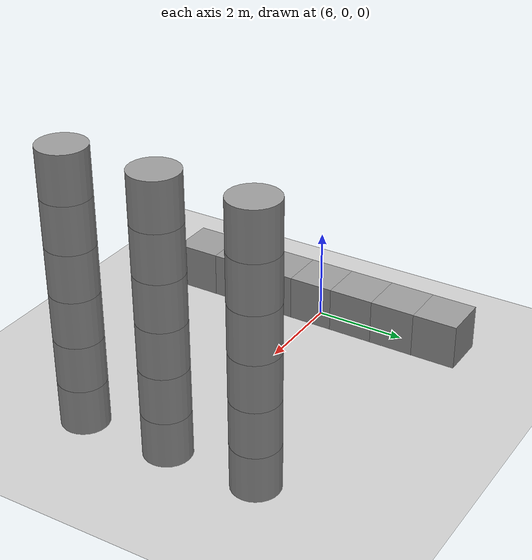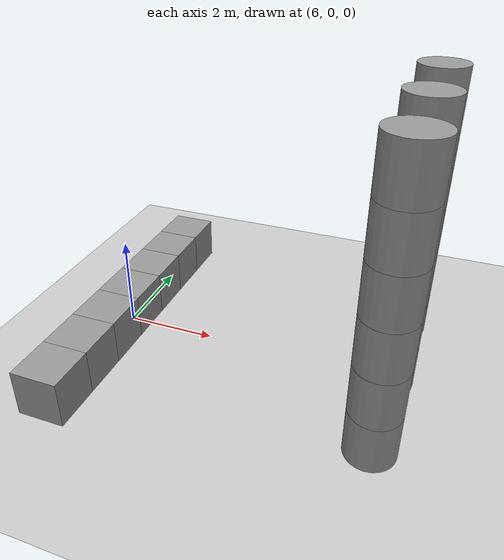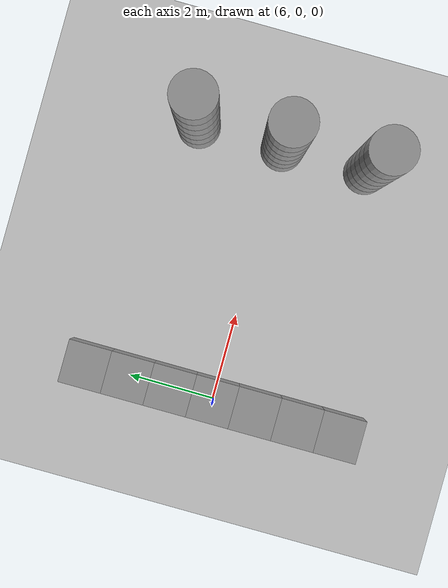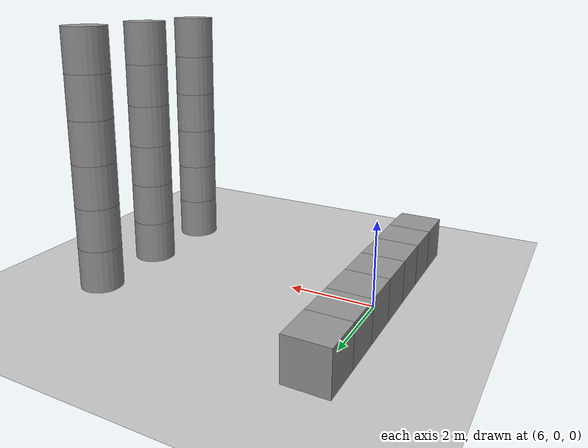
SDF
<sdf version="1.6">
 <world name="default">
  <light name="sun" type="directional">
   <pose>0 0 10 0 -0 0</pose>
   <diffuse>0.8 0.8 0.8 1</diffuse>
   <specular>0.2 0.2 0.2 1</specular>
   <attenuation>
    <range>1000</range>
    <constant>0.9</constant>
    <linear>0.01</linear>
    <quadratic>0.001</quadratic>
   </attenuation>
   <direction>-0.5 0.1 -0.9</direction>
  </light>
  <model name="ground_plane">
   <static>1</static>
   <link name="link">
    <collision name="collision">
     <geometry><plane><normal>0 0 1</normal><size>100 100</size></plane></geometry>
     <surface>
      <contact><collide_bitmask>65535</collide_bitmask></contact>
      <friction><ode><mu>100</mu><mu2>50</mu2></ode></friction>
     </surface>
    </collision>
    <visual name="visual">
     <cast_shadows>0</cast_shadows>
     <geometry><plane><normal>0 0 1</normal><size>100 100</size></plane></geometry>
     <material>
      <script><uri>file://media/materials/scripts/gazebo.material</uri><name>Gazebo/Grey</name></script>
     </material>
    </visual>
   </link>
  </model>
  <gravity>0 0 -9.8</gravity>
  <magnetic_field>6e-06 2.3e-05 -4.2e-05</magnetic_field>
  <atmosphere type="adiabatic"/>
  <physics name="default_physics" default="0" type="ode">
   <max_step_size>0.001</max_step_size>
   <real_time_factor>1</real_time_factor>
   <real_time_update_rate>1000</real_time_update_rate>
  </physics>
  <scene><ambient>0.4 0.4 0.4 1</ambient><background>0.7 0.7 0.7 1</background><shadows>1</shadows></scene>
  <audio><device>default</device></audio>
  <spherical_coordinates>
   <surface_model>EARTH_WGS84</surface_model>
   <latitude_deg>0</latitude_deg>
   <longitude_deg>0</longitude_deg>
   <elevation>0</elevation>
   <heading_deg>0</heading_deg>
  </spherical_coordinates>
  <model name="obs_box">
   <link name="link">
    <inertial>
     <mass>1</mass>
     <inertia>
      <ixx>0.166667</ixx>
      <ixy>0</ixy>
      <ixz>0</ixz>
      <iyy>0.166667</iyy>
      <iyz>0</iyz>
      <izz>0.166667</izz>
     </inertia>
    </inertial>
    <visual name="visual">
     <geometry><box><size>1 1 1</size></box></geometry>
     <material>
      <script><name>Gazebo/Grey</name><uri>file://media/materials/scripts/gazebo.material</uri></script>
     </material>
    </visual>
    <collision name="collision">
     <geometry><box><size>1 1 1</size></box></geometry>
     <surface>
      <friction>
       <ode><mu>1</mu><mu2>1</mu2><fdir1>0 0 0</fdir1><slip1>0</slip1><slip2>0</slip2></ode>
       <torsional>
        <coefficient>1</coefficient>
        <patch_radius>0</patch_radius>
        <surface_radius>0</surface_radius>
        <use_patch_radius>1</use_patch_radius>
        <ode><slip>0</slip></ode>
       </torsional>
      </friction>
      <bounce><restitution_coefficient>0</restitution_coefficient><threshold>1e+06</threshold></bounce>
      <contact>
       <collide_without_contact>0</collide_without_contact>
       <collide_without_contact_bitmask>1</collide_without_contact_bitmask>
       <collide_bitmask>1</collide_bitmask>
       <ode>
        <soft_cfm>0</soft_cfm>
        <soft_erp>0.2</soft_erp>
        <kp>1e+13</kp>
        <kd>1</kd>
        <max_vel>0.01</max_vel>
        <min_depth>0</min_depth>
       </ode>
       <bullet>
        <split_impulse>1</split_impulse>
        <split_impulse_penetration_threshold>-0.01</split_impulse_penetration_threshold>
        <soft_cfm>0</soft_cfm>
        <soft_erp>0.2</soft_erp>
        <kp>1e+13</kp>
        <kd>1</kd>
       </bullet>
      </contact>
     </surface>
    </collision>
   </link>
   <static>1</static>
   <pose>6 -1 0.5 0 -0 0</pose>
  </model>
  <model name="obs_box_clone">
   <link name="link">
    <inertial>
     <mass>1</mass>
     <inertia>
      <ixx>0.166667</ixx>
      <ixy>0</ixy>
      <ixz>0</ixz>
      <iyy>0.166667</iyy>
      <iyz>0</iyz>
      <izz>0.166667</izz>
     </inertia>
    </inertial>
    <visual name="visual">
     <geometry><box><size>1 1 1</size></box></geometry>
     <material>
      <script><name>Gazebo/Grey</name><uri>file://media/materials/scripts/gazebo.material</uri></script>
     </material>
    </visual>
    <collision name="collision">
     <geometry><box><size>1 1 1</size></box></geometry>
     <surface>
      <friction>
       <ode><mu>1</mu><mu2>1</mu2><fdir1>0 0 0</fdir1><slip1>0</slip1><slip2>0</slip2></ode>
       <torsional>
        <coefficient>1</coefficient>
        <patch_radius>0</patch_radius>
        <surface_radius>0</surface_radius>
        <use_patch_radius>1</use_patch_radius>
        <ode><slip>0</slip></ode>
       </torsional>
      </friction>
      <bounce><restitution_coefficient>0</restitution_coefficient><threshold>1e+06</threshold></bounce>
      <contact>
       <collide_without_contact>0</collide_without_contact>
       <collide_without_contact_bitmask>1</collide_without_contact_bitmask>
       <collide_bitmask>1</collide_bitmask>
       <ode>
        <soft_cfm>0</soft_cfm>
        <soft_erp>0.2</soft_erp>
        <kp>1e+13</kp>
        <kd>1</kd>
        <max_vel>0.01</max_vel>
        <min_depth>0</min_depth>
       </ode>
       <bullet>
        <split_impulse>1</split_impulse>
        <split_impulse_penetration_threshold>-0.01</split_impulse_penetration_threshold>
        <soft_cfm>0</soft_cfm>
        <soft_erp>0.2</soft_erp>
        <kp>1e+13</kp>
        <kd>1</kd>
       </bullet>
      </contact>
     </surface>
    </collision>
   </link>
   <static>1</static>
   <pose>6 1 0.5 0 -0 0</pose>
  </model>
  <model name="obs_box_clone_0">
   <link name="link">
    <inertial>
     <mass>1</mass>
     <inertia>
      <ixx>0.166667</ixx>
      <ixy>0</ixy>
      <ixz>0</ixz>
      <iyy>0.166667</iyy>
      <iyz>0</iyz>
      <izz>0.166667</izz>
     </inertia>
    </inertial>
    <visual name="visual">
     <geometry><box><size>1 1 1</size></box></geometry>
     <material>
      <script><name>Gazebo/Grey</name><uri>file://media/materials/scripts/gazebo.material</uri></script>
     </material>
    </visual>
    <collision name="collision">
     <geometry><box><size>1 1 1</size></box></geometry>
     <surface>
      <friction>
       <ode><mu>1</mu><mu2>1</mu2><fdir1>0 0 0</fdir1><slip1>0</slip1><slip2>0</slip2></ode>
       <torsional>
        <coefficient>1</coefficient>
        <patch_radius>0</patch_radius>
        <surface_radius>0</surface_radius>
        <use_patch_radius>1</use_patch_radius>
        <ode><slip>0</slip></ode>
       </torsional>
      </friction>
      <bounce><restitution_coefficient>0</restitution_coefficient><threshold>1e+06</threshold></bounce>
      <contact>
       <collide_without_contact>0</collide_without_contact>
       <collide_without_contact_bitmask>1</collide_without_contact_bitmask>
       <collide_bitmask>1</collide_bitmask>
       <ode>
        <soft_cfm>0</soft_cfm>
        <soft_erp>0.2</soft_erp>
        <kp>1e+13</kp>
        <kd>1</kd>
        <max_vel>0.01</max_vel>
        <min_depth>0</min_depth>
       </ode>
       <bullet>
        <split_impulse>1</split_impulse>
        <split_impulse_penetration_threshold>-0.01</split_impulse_penetration_threshold>
        <soft_cfm>0</soft_cfm>
        <soft_erp>0.2</soft_erp>
        <kp>1e+13</kp>
        <kd>1</kd>
       </bullet>
      </contact>
     </surface>
    </collision>
   </link>
   <static>1</static>
   <pose>6 0 0.5 0 -0 0</pose>
  </model>
  <model name="obs_cylinder">
   <link name="link">
    <inertial>
     <mass>1</mass>
     <inertia><ixx>0.145833</ixx><ixy>0</ixy><ixz>0</ixz><iyy>0.145833</iyy><iyz>0</iyz><izz>0.125</izz></inertia>
    </inertial>
    <visual name="visual">
     <geometry><cylinder><radius>0.5</radius><length>1</length></cylinder></geometry>
     <material>
      <script><name>Gazebo/Grey</name><uri>file://media/materials/scripts/gazebo.material</uri></script>
     </material>
    </visual>
    <collision name="collision">
     <geometry><cylinder><radius>0.5</radius><length>1</length></cylinder></geometry>
     <surface>
      <friction>
       <ode><mu>1</mu><mu2>1</mu2><fdir1>0 0 0</fdir1><slip1>0</slip1><slip2>0</slip2></ode>
       <torsional>
        <coefficient>1</coefficient>
        <patch_radius>0</patch_radius>
        <surface_radius>0</surface_radius>
        <use_patch_radius>1</use_patch_radius>
        <ode><slip>0</slip></ode>
       </torsional>
      </friction>
      <bounce><restitution_coefficient>0</restitution_coefficient><threshold>1e+06</threshold></bounce>
      <contact>
       <collide_without_contact>0</collide_without_contact>
       <collide_without_contact_bitmask>1</collide_without_contact_bitmask>
       <collide_bitmask>1</collide_bitmask>
       <ode>
        <soft_cfm>0</soft_cfm>
        <soft_erp>0.2</soft_erp>
        <kp>1e+13</kp>
        <kd>1</kd>
        <max_vel>0.01</max_vel>
        <min_depth>0</min_depth>
       </ode>
       <bullet>
        <split_impulse>1</split_impulse>
        <split_impulse_penetration_threshold>-0.01</split_impulse_penetration_threshold>
        <soft_cfm>0</soft_cfm>
        <soft_erp>0.2</soft_erp>
        <kp>1e+13</kp>
        <kd>1</kd>
       </bullet>
      </contact>
     </surface>
    </collision>
   </link>
   <static>1</static>
   <pose>12 -2 0.5 0 -0 0</pose>
  </model>
  <model name="obs_cylinder_clone">
   <link name="link">
    <inertial>
     <mass>1</mass>
     <inertia><ixx>0.145833</ixx><ixy>0</ixy><ixz>0</ixz><iyy>0.145833</iyy><iyz>0</iyz><izz>0.125</izz></inertia>
    </inertial>
    <visual name="visual">
     <geometry><cylinder><radius>0.5</radius><length>1</length></cylinder></geometry>
     <material>
      <script><name>Gazebo/Grey</name><uri>file://media/materials/scripts/gazebo.material</uri></script>
     </material>
    </visual>
    <collision name="collision">
     <geometry><cylinder><radius>0.5</radius><length>1</length></cylinder></geometry>
     <surface>
      <friction>
       <ode><mu>1</mu><mu2>1</mu2><fdir1>0 0 0</fdir1><slip1>0</slip1><slip2>0</slip2></ode>
       <torsional>
        <coefficient>1</coefficient>
        <patch_radius>0</patch_radius>
        <surface_radius>0</surface_radius>
        <use_patch_radius>1</use_patch_radius>
        <ode><slip>0</slip></ode>
       </torsional>
      </friction>
      <bounce><restitution_coefficient>0</restitution_coefficient><threshold>1e+06</threshold></bounce>
      <contact>
       <collide_without_contact>0</collide_without_contact>
       <collide_without_contact_bitmask>1</collide_without_contact_bitmask>
       <collide_bitmask>1</collide_bitmask>
       <ode>
        <soft_cfm>0</soft_cfm>
        <soft_erp>0.2</soft_erp>
        <kp>1e+13</kp>
        <kd>1</kd>
        <max_vel>0.01</max_vel>
        <min_depth>0</min_depth>
       </ode>
       <bullet>
        <split_impulse>1</split_impulse>
        <split_impulse_penetration_threshold>-0.01</split_impulse_penetration_threshold>
        <soft_cfm>0</soft_cfm>
        <soft_erp>0.2</soft_erp>
        <kp>1e+13</kp>
        <kd>1</kd>
       </bullet>
      </contact>
     </surface>
    </collision>
   </link>
   <static>1</static>
   <pose>12 -2 1.5 0 -0 0</pose>
  </model>
  <model name="obs_cylinder_clone_clone">
   <link name="link">
    <inertial>
     <mass>1</mass>
     <inertia><ixx>0.145833</ixx><ixy>0</ixy><ixz>0</ixz><iyy>0.145833</iyy><iyz>0</iyz><izz>0.125</izz></inertia>
    </inertial>
    <visual name="visual">
     <geometry><cylinder><radius>0.5</radius><length>1</length></cylinder></geometry>
     <material>
      <script><name>Gazebo/Grey</name><uri>file://media/materials/scripts/gazebo.material</uri></script>
     </material>
    </visual>
    <collision name="collision">
     <geometry><cylinder><radius>0.5</radius><length>1</length></cylinder></geometry>
     <surface>
      <friction>
       <ode><mu>1</mu><mu2>1</mu2><fdir1>0 0 0</fdir1><slip1>0</slip1><slip2>0</slip2></ode>
       <torsional>
        <coefficient>1</coefficient>
        <patch_radius>0</patch_radius>
        <surface_radius>0</surface_radius>
        <use_patch_radius>1</use_patch_radius>
        <ode><slip>0</slip></ode>
       </torsional>
      </friction>
      <bounce><restitution_coefficient>0</restitution_coefficient><threshold>1e+06</threshold></bounce>
      <contact>
       <collide_without_contact>0</collide_without_contact>
       <collide_without_contact_bitmask>1</collide_without_contact_bitmask>
       <collide_bitmask>1</collide_bitmask>
       <ode>
        <soft_cfm>0</soft_cfm>
        <soft_erp>0.2</soft_erp>
        <kp>1e+13</kp>
        <kd>1</kd>
        <max_vel>0.01</max_vel>
        <min_depth>0</min_depth>
       </ode>
       <bullet>
        <split_impulse>1</split_impulse>
        <split_impulse_penetration_threshold>-0.01</split_impulse_penetration_threshold>
        <soft_cfm>0</soft_cfm>
        <soft_erp>0.2</soft_erp>
        <kp>1e+13</kp>
        <kd>1</kd>
       </bullet>
      </contact>
     </surface>
    </collision>
   </link>
   <static>1</static>
   <pose>12 -2 2.5 0 -0 0</pose>
  </model>
  <model name="obs_cylinder_clone_0">
   <link name="link">
    <inertial>
     <mass>1</mass>
     <inertia><ixx>0.145833</ixx><ixy>0</ixy><ixz>0</ixz><iyy>0.145833</iyy><iyz>0</iyz><izz>0.125</izz></inertia>
    </inertial>
    <visual name="visual">
     <geometry><cylinder><radius>0.5</radius><length>1</length></cylinder></geometry>
     <material>
      <script><name>Gazebo/Grey</name><uri>file://media/materials/scripts/gazebo.material</uri></script>
     </material>
    </visual>
    <collision name="collision">
     <geometry><cylinder><radius>0.5</radius><length>1</length></cylinder></geometry>
     <surface>
      <friction>
       <ode><mu>1</mu><mu2>1</mu2><fdir1>0 0 0</fdir1><slip1>0</slip1><slip2>0</slip2></ode>
       <torsional>
        <coefficient>1</coefficient>
        <patch_radius>0</patch_radius>
        <surface_radius>0</surface_radius>
        <use_patch_radius>1</use_patch_radius>
        <ode><slip>0</slip></ode>
       </torsional>
      </friction>
      <bounce><restitution_coefficient>0</restitution_coefficient><threshold>1e+06</threshold></bounce>
      <contact>
       <collide_without_contact>0</collide_without_contact>
       <collide_without_contact_bitmask>1</collide_without_contact_bitmask>
       <collide_bitmask>1</collide_bitmask>
       <ode>
        <soft_cfm>0</soft_cfm>
        <soft_erp>0.2</soft_erp>
        <kp>1e+13</kp>
        <kd>1</kd>
        <max_vel>0.01</max_vel>
        <min_depth>0</min_depth>
       </ode>
       <bullet>
        <split_impulse>1</split_impulse>
        <split_impulse_penetration_threshold>-0.01</split_impulse_penetration_threshold>
        <soft_cfm>0</soft_cfm>
        <soft_erp>0.2</soft_erp>
        <kp>1e+13</kp>
        <kd>1</kd>
       </bullet>
      </contact>
     </surface>
    </collision>
   </link>
   <static>1</static>
   <pose>12 0 0.5 0 -0 0</pose>
  </model>
  <model name="obs_cylinder_clone_0_clone">
   <link name="link">
    <inertial>
     <mass>1</mass>
     <inertia><ixx>0.145833</ixx><ixy>0</ixy><ixz>0</ixz><iyy>0.145833</iyy><iyz>0</iyz><izz>0.125</izz></inertia>
    </inertial>
    <visual name="visual">
     <geometry><cylinder><radius>0.5</radius><length>1</length></cylinder></geometry>
     <material>
      <script><name>Gazebo/Grey</name><uri>file://media/materials/scripts/gazebo.material</uri></script>
     </material>
    </visual>
    <collision name="collision">
     <geometry><cylinder><radius>0.5</radius><length>1</length></cylinder></geometry>
     <surface>
      <friction>
       <ode><mu>1</mu><mu2>1</mu2><fdir1>0 0 0</fdir1><slip1>0</slip1><slip2>0</slip2></ode>
       <torsional>
        <coefficient>1</coefficient>
        <patch_radius>0</patch_radius>
        <surface_radius>0</surface_radius>
        <use_patch_radius>1</use_patch_radius>
        <ode><slip>0</slip></ode>
       </torsional>
      </friction>
      <bounce><restitution_coefficient>0</restitution_coefficient><threshold>1e+06</threshold></bounce>
      <contact>
       <collide_without_contact>0</collide_without_contact>
       <collide_without_contact_bitmask>1</collide_without_contact_bitmask>
       <collide_bitmask>1</collide_bitmask>
       <ode>
        <soft_cfm>0</soft_cfm>
        <soft_erp>0.2</soft_erp>
        <kp>1e+13</kp>
        <kd>1</kd>
        <max_vel>0.01</max_vel>
        <min_depth>0</min_depth>
       </ode>
       <bullet>
        <split_impulse>1</split_impulse>
        <split_impulse_penetration_threshold>-0.01</split_impulse_penetration_threshold>
        <soft_cfm>0</soft_cfm>
        <soft_erp>0.2</soft_erp>
        <kp>1e+13</kp>
        <kd>1</kd>
       </bullet>
      </contact>
     </surface>
    </collision>
   </link>
   <static>1</static>
   <pose>12 2 0.5 0 -0 0</pose>
  </model>
  <model name="obs_cylinder_clone_clone_0">
   <link name="link">
    <inertial>
     <mass>1</mass>
     <inertia><ixx>0.145833</ixx><ixy>0</ixy><ixz>0</ixz><iyy>0.145833</iyy><iyz>0</iyz><izz>0.125</izz></inertia>
    </inertial>
    <visual name="visual">
     <geometry><cylinder><radius>0.5</radius><length>1</length></cylinder></geometry>
     <material>
      <script><name>Gazebo/Grey</name><uri>file://media/materials/scripts/gazebo.material</uri></script>
     </material>
    </visual>
    <collision name="collision">
     <geometry><cylinder><radius>0.5</radius><length>1</length></cylinder></geometry>
     <surface>
      <friction>
       <ode><mu>1</mu><mu2>1</mu2><fdir1>0 0 0</fdir1><slip1>0</slip1><slip2>0</slip2></ode>
       <torsional>
        <coefficient>1</coefficient>
        <patch_radius>0</patch_radius>
        <surface_radius>0</surface_radius>
        <use_patch_radius>1</use_patch_radius>
        <ode><slip>0</slip></ode>
       </torsional>
      </friction>
      <bounce><restitution_coefficient>0</restitution_coefficient><threshold>1e+06</threshold></bounce>
      <contact>
       <collide_without_contact>0</collide_without_contact>
       <collide_without_contact_bitmask>1</collide_without_contact_bitmask>
       <collide_bitmask>1</collide_bitmask>
       <ode>
        <soft_cfm>0</soft_cfm>
        <soft_erp>0.2</soft_erp>
        <kp>1e+13</kp>
        <kd>1</kd>
        <max_vel>0.01</max_vel>
        <min_depth>0</min_depth>
       </ode>
       <bullet>
        <split_impulse>1</split_impulse>
        <split_impulse_penetration_threshold>-0.01</split_impulse_penetration_threshold>
        <soft_cfm>0</soft_cfm>
        <soft_erp>0.2</soft_erp>
        <kp>1e+13</kp>
        <kd>1</kd>
       </bullet>
      </contact>
     </surface>
    </collision>
   </link>
   <static>1</static>
   <pose>12 0 1.5 0 -0 0</pose>
  </model>
  <model name="obs_cylinder_clone_clone_0_clone">
   <link name="link">
    <inertial>
     <mass>1</mass>
     <inertia><ixx>0.145833</ixx><ixy>0</ixy><ixz>0</ixz><iyy>0.145833</iyy><iyz>0</iyz><izz>0.125</izz></inertia>
    </inertial>
    <visual name="visual">
     <geometry><cylinder><radius>0.5</radius><length>1</length></cylinder></geometry>
     <material>
      <script><name>Gazebo/Grey</name><uri>file://media/materials/scripts/gazebo.material</uri></script>
     </material>
    </visual>
    <collision name="collision">
     <geometry><cylinder><radius>0.5</radius><length>1</length></cylinder></geometry>
     <surface>
      <friction>
       <ode><mu>1</mu><mu2>1</mu2><fdir1>0 0 0</fdir1><slip1>0</slip1><slip2>0</slip2></ode>
       <torsional>
        <coefficient>1</coefficient>
        <patch_radius>0</patch_radius>
        <surface_radius>0</surface_radius>
        <use_patch_radius>1</use_patch_radius>
        <ode><slip>0</slip></ode>
       </torsional>
      </friction>
      <bounce><restitution_coefficient>0</restitution_coefficient><threshold>1e+06</threshold></bounce>
      <contact>
       <collide_without_contact>0</collide_without_contact>
       <collide_without_contact_bitmask>1</collide_without_contact_bitmask>
       <collide_bitmask>1</collide_bitmask>
       <ode>
        <soft_cfm>0</soft_cfm>
        <soft_erp>0.2</soft_erp>
        <kp>1e+13</kp>
        <kd>1</kd>
        <max_vel>0.01</max_vel>
        <min_depth>0</min_depth>
       </ode>
       <bullet>
        <split_impulse>1</split_impulse>
        <split_impulse_penetration_threshold>-0.01</split_impulse_penetration_threshold>
        <soft_cfm>0</soft_cfm>
        <soft_erp>0.2</soft_erp>
        <kp>1e+13</kp>
        <kd>1</kd>
       </bullet>
      </contact>
     </surface>
    </collision>
   </link>
   <static>1</static>
   <pose>12 2 1.5 0 -0 0</pose>
  </model>
  <model name="obs_cylinder_clone_clone_clone">
   <link name="link">
    <inertial>
     <mass>1</mass>
     <inertia><ixx>0.145833</ixx><ixy>0</ixy><ixz>0</ixz><iyy>0.145833</iyy><iyz>0</iyz><izz>0.125</izz></inertia>
    </inertial>
    <visual name="visual">
     <geometry><cylinder><radius>0.5</radius><length>1</length></cylinder></geometry>
     <material>
      <script><name>Gazebo/Grey</name><uri>file://media/materials/scripts/gazebo.material</uri></script>
     </material>
    </visual>
    <collision name="collision">
     <geometry><cylinder><radius>0.5</radius><length>1</length></cylinder></geometry>
     <surface>
      <friction>
       <ode><mu>1</mu><mu2>1</mu2><fdir1>0 0 0</fdir1><slip1>0</slip1><slip2>0</slip2></ode>
       <torsional>
        <coefficient>1</coefficient>
        <patch_radius>0</patch_radius>
        <surface_radius>0</surface_radius>
        <use_patch_radius>1</use_patch_radius>
        <ode><slip>0</slip></ode>
       </torsional>
      </friction>
      <bounce><restitution_coefficient>0</restitution_coefficient><threshold>1e+06</threshold></bounce>
      <contact>
       <collide_without_contact>0</collide_without_contact>
       <collide_without_contact_bitmask>1</collide_without_contact_bitmask>
       <collide_bitmask>1</collide_bitmask>
       <ode>
        <soft_cfm>0</soft_cfm>
        <soft_erp>0.2</soft_erp>
        <kp>1e+13</kp>
        <kd>1</kd>
        <max_vel>0.01</max_vel>
        <min_depth>0</min_depth>
       </ode>
       <bullet>
        <split_impulse>1</split_impulse>
        <split_impulse_penetration_threshold>-0.01</split_impulse_penetration_threshold>
        <soft_cfm>0</soft_cfm>
        <soft_erp>0.2</soft_erp>
        <kp>1e+13</kp>
        <kd>1</kd>
       </bullet>
      </contact>
     </surface>
    </collision>
   </link>
   <static>1</static>
   <pose>12 0 2.5 0 -0 0</pose>
  </model>
  <model name="obs_cylinder_clone_clone_clone_clone">
   <link name="link">
    <inertial>
     <mass>1</mass>
     <inertia><ixx>0.145833</ixx><ixy>0</ixy><ixz>0</ixz><iyy>0.145833</iyy><iyz>0</iyz><izz>0.125</izz></inertia>
    </inertial>
    <visual name="visual">
     <geometry><cylinder><radius>0.5</radius><length>1</length></cylinder></geometry>
     <material>
      <script><name>Gazebo/Grey</name><uri>file://media/materials/scripts/gazebo.material</uri></script>
     </material>
    </visual>
    <collision name="collision">
     <geometry><cylinder><radius>0.5</radius><length>1</length></cylinder></geometry>
     <surface>
      <friction>
       <ode><mu>1</mu><mu2>1</mu2><fdir1>0 0 0</fdir1><slip1>0</slip1><slip2>0</slip2></ode>
       <torsional>
        <coefficient>1</coefficient>
        <patch_radius>0</patch_radius>
        <surface_radius>0</surface_radius>
        <use_patch_radius>1</use_patch_radius>
        <ode><slip>0</slip></ode>
       </torsional>
      </friction>
      <bounce><restitution_coefficient>0</restitution_coefficient><threshold>1e+06</threshold></bounce>
      <contact>
       <collide_without_contact>0</collide_without_contact>
       <collide_without_contact_bitmask>1</collide_without_contact_bitmask>
       <collide_bitmask>1</collide_bitmask>
       <ode>
        <soft_cfm>0</soft_cfm>
        <soft_erp>0.2</soft_erp>
        <kp>1e+13</kp>
        <kd>1</kd>
        <max_vel>0.01</max_vel>
        <min_depth>0</min_depth>
       </ode>
       <bullet>
        <split_impulse>1</split_impulse>
        <split_impulse_penetration_threshold>-0.01</split_impulse_penetration_threshold>
        <soft_cfm>0</soft_cfm>
        <soft_erp>0.2</soft_erp>
        <kp>1e+13</kp>
        <kd>1</kd>
       </bullet>
      </contact>
     </surface>
    </collision>
   </link>
   <static>1</static>
   <pose>12 2 2.5 0 -0 0</pose>
  </model>
  <model name="obs_cylinder_clone_clone_clone_0">
   <link name="link">
    <inertial>
     <mass>1</mass>
     <inertia><ixx>0.145833</ixx><ixy>0</ixy><ixz>0</ixz><iyy>0.145833</iyy><iyz>0</iyz><izz>0.125</izz></inertia>
    </inertial>
    <visual name="visual">
     <geometry><cylinder><radius>0.5</radius><length>1</length></cylinder></geometry>
     <material>
      <script><name>Gazebo/Grey</name><uri>file://media/materials/scripts/gazebo.material</uri></script>
     </material>
    </visual>
    <collision name="collision">
     <geometry><cylinder><radius>0.5</radius><length>1</length></cylinder></geometry>
     <surface>
      <friction>
       <ode><mu>1</mu><mu2>1</mu2><fdir1>0 0 0</fdir1><slip1>0</slip1><slip2>0</slip2></ode>
       <torsional>
        <coefficient>1</coefficient>
        <patch_radius>0</patch_radius>
        <surface_radius>0</surface_radius>
        <use_patch_radius>1</use_patch_radius>
        <ode><slip>0</slip></ode>
       </torsional>
      </friction>
      <bounce><restitution_coefficient>0</restitution_coefficient><threshold>1e+06</threshold></bounce>
      <contact>
       <collide_without_contact>0</collide_without_contact>
       <collide_without_contact_bitmask>1</collide_without_contact_bitmask>
       <collide_bitmask>1</collide_bitmask>
       <ode>
        <soft_cfm>0</soft_cfm>
        <soft_erp>0.2</soft_erp>
        <kp>1e+13</kp>
        <kd>1</kd>
        <max_vel>0.01</max_vel>
        <min_depth>0</min_depth>
       </ode>
       <bullet>
        <split_impulse>1</split_impulse>
        <split_impulse_penetration_threshold>-0.01</split_impulse_penetration_threshold>
        <soft_cfm>0</soft_cfm>
        <soft_erp>0.2</soft_erp>
        <kp>1e+13</kp>
        <kd>1</kd>
       </bullet>
      </contact>
     </surface>
    </collision>
   </link>
   <static>1</static>
   <pose>12 -2 3.5 0 -0 0</pose>
  </model>
  <model name="obs_cylinder_clone_clone_clone_0_clone">
   <link name="link">
    <inertial>
     <mass>1</mass>
     <inertia><ixx>0.145833</ixx><ixy>0</ixy><ixz>0</ixz><iyy>0.145833</iyy><iyz>0</iyz><izz>0.125</izz></inertia>
    </inertial>
    <visual name="visual">
     <geometry><cylinder><radius>0.5</radius><length>1</length></cylinder></geometry>
     <material>
      <script><name>Gazebo/Grey</name><uri>file://media/materials/scripts/gazebo.material</uri></script>
     </material>
    </visual>
    <collision name="collision">
     <geometry><cylinder><radius>0.5</radius><length>1</length></cylinder></geometry>
     <surface>
      <friction>
       <ode><mu>1</mu><mu2>1</mu2><fdir1>0 0 0</fdir1><slip1>0</slip1><slip2>0</slip2></ode>
       <torsional>
        <coefficient>1</coefficient>
        <patch_radius>0</patch_radius>
        <surface_radius>0</surface_radius>
        <use_patch_radius>1</use_patch_radius>
        <ode><slip>0</slip></ode>
       </torsional>
      </friction>
      <bounce><restitution_coefficient>0</restitution_coefficient><threshold>1e+06</threshold></bounce>
      <contact>
       <collide_without_contact>0</collide_without_contact>
       <collide_without_contact_bitmask>1</collide_without_contact_bitmask>
       <collide_bitmask>1</collide_bitmask>
       <ode>
        <soft_cfm>0</soft_cfm>
        <soft_erp>0.2</soft_erp>
        <kp>1e+13</kp>
        <kd>1</kd>
        <max_vel>0.01</max_vel>
        <min_depth>0</min_depth>
       </ode>
       <bullet>
        <split_impulse>1</split_impulse>
        <split_impulse_penetration_threshold>-0.01</split_impulse_penetration_threshold>
        <soft_cfm>0</soft_cfm>
        <soft_erp>0.2</soft_erp>
        <kp>1e+13</kp>
        <kd>1</kd>
       </bullet>
      </contact>
     </surface>
    </collision>
   </link>
   <static>1</static>
   <pose>12 0 3.5 0 -0 0</pose>
  </model>
  <model name="obs_cylinder_clone_clone_clone_0_clone_clone">
   <link name="link">
    <inertial>
     <mass>1</mass>
     <inertia><ixx>0.145833</ixx><ixy>0</ixy><ixz>0</ixz><iyy>0.145833</iyy><iyz>0</iyz><izz>0.125</izz></inertia>
    </inertial>
    <visual name="visual">
     <geometry><cylinder><radius>0.5</radius><length>1</length></cylinder></geometry>
     <material>
      <script><name>Gazebo/Grey</name><uri>file://media/materials/scripts/gazebo.material</uri></script>
     </material>
    </visual>
    <collision name="collision">
     <geometry><cylinder><radius>0.5</radius><length>1</length></cylinder></geometry>
     <surface>
      <friction>
       <ode><mu>1</mu><mu2>1</mu2><fdir1>0 0 0</fdir1><slip1>0</slip1><slip2>0</slip2></ode>
       <torsional>
        <coefficient>1</coefficient>
        <patch_radius>0</patch_radius>
        <surface_radius>0</surface_radius>
        <use_patch_radius>1</use_patch_radius>
        <ode><slip>0</slip></ode>
       </torsional>
      </friction>
      <bounce><restitution_coefficient>0</restitution_coefficient><threshold>1e+06</threshold></bounce>
      <contact>
       <collide_without_contact>0</collide_without_contact>
       <collide_without_contact_bitmask>1</collide_without_contact_bitmask>
       <collide_bitmask>1</collide_bitmask>
       <ode>
        <soft_cfm>0</soft_cfm>
        <soft_erp>0.2</soft_erp>
        <kp>1e+13</kp>
        <kd>1</kd>
        <max_vel>0.01</max_vel>
        <min_depth>0</min_depth>
       </ode>
       <bullet>
        <split_impulse>1</split_impulse>
        <split_impulse_penetration_threshold>-0.01</split_impulse_penetration_threshold>
        <soft_cfm>0</soft_cfm>
        <soft_erp>0.2</soft_erp>
        <kp>1e+13</kp>
        <kd>1</kd>
       </bullet>
      </contact>
     </surface>
    </collision>
   </link>
   <static>1</static>
   <pose>12 2 3.5 0 -0 0</pose>
  </model>
  <model name="obs_cylinder_clone_clone_clone_0_clone_0">
   <link name="link">
    <inertial>
     <mass>1</mass>
     <inertia><ixx>0.145833</ixx><ixy>0</ixy><ixz>0</ixz><iyy>0.145833</iyy><iyz>0</iyz><izz>0.125</izz></inertia>
    </inertial>
    <visual name="visual">
     <geometry><cylinder><radius>0.5</radius><length>1</length></cylinder></geometry>
     <material>
      <script><name>Gazebo/Grey</name><uri>file://media/materials/scripts/gazebo.material</uri></script>
     </material>
    </visual>
    <collision name="collision">
     <geometry><cylinder><radius>0.5</radius><length>1</length></cylinder></geometry>
     <surface>
      <friction>
       <ode><mu>1</mu><mu2>1</mu2><fdir1>0 0 0</fdir1><slip1>0</slip1><slip2>0</slip2></ode>
       <torsional>
        <coefficient>1</coefficient>
        <patch_radius>0</patch_radius>
        <surface_radius>0</surface_radius>
        <use_patch_radius>1</use_patch_radius>
        <ode><slip>0</slip></ode>
       </torsional>
      </friction>
      <bounce><restitution_coefficient>0</restitution_coefficient><threshold>1e+06</threshold></bounce>
      <contact>
       <collide_without_contact>0</collide_without_contact>
       <collide_without_contact_bitmask>1</collide_without_contact_bitmask>
       <collide_bitmask>1</collide_bitmask>
       <ode>
        <soft_cfm>0</soft_cfm>
        <soft_erp>0.2</soft_erp>
        <kp>1e+13</kp>
        <kd>1</kd>
        <max_vel>0.01</max_vel>
        <min_depth>0</min_depth>
       </ode>
       <bullet>
        <split_impulse>1</split_impulse>
        <split_impulse_penetration_threshold>-0.01</split_impulse_penetration_threshold>
        <soft_cfm>0</soft_cfm>
        <soft_erp>0.2</soft_erp>
        <kp>1e+13</kp>
        <kd>1</kd>
       </bullet>
      </contact>
     </surface>
    </collision>
   </link>
   <static>1</static>
   <pose>12 -2 4.5 0 -0 0</pose>
  </model>
  <model name="obs_cylinder_clone_clone_clone_0_clone_0_clone">
   <link name="link">
    <inertial>
     <mass>1</mass>
     <inertia><ixx>0.145833</ixx><ixy>0</ixy><ixz>0</ixz><iyy>0.145833</iyy><iyz>0</iyz><izz>0.125</izz></inertia>
    </inertial>
    <visual name="visual">
     <geometry><cylinder><radius>0.5</radius><length>1</length></cylinder></geometry>
     <material>
      <script><name>Gazebo/Grey</name><uri>file://media/materials/scripts/gazebo.material</uri></script>
     </material>
    </visual>
    <collision name="collision">
     <geometry><cylinder><radius>0.5</radius><length>1</length></cylinder></geometry>
     <surface>
      <friction>
       <ode><mu>1</mu><mu2>1</mu2><fdir1>0 0 0</fdir1><slip1>0</slip1><slip2>0</slip2></ode>
       <torsional>
        <coefficient>1</coefficient>
        <patch_radius>0</patch_radius>
        <surface_radius>0</surface_radius>
        <use_patch_radius>1</use_patch_radius>
        <ode><slip>0</slip></ode>
       </torsional>
      </friction>
      <bounce><restitution_coefficient>0</restitution_coefficient><threshold>1e+06</threshold></bounce>
      <contact>
       <collide_without_contact>0</collide_without_contact>
       <collide_without_contact_bitmask>1</collide_without_contact_bitmask>
       <collide_bitmask>1</collide_bitmask>
       <ode>
        <soft_cfm>0</soft_cfm>
        <soft_erp>0.2</soft_erp>
        <kp>1e+13</kp>
        <kd>1</kd>
        <max_vel>0.01</max_vel>
        <min_depth>0</min_depth>
       </ode>
       <bullet>
        <split_impulse>1</split_impulse>
        <split_impulse_penetration_threshold>-0.01</split_impulse_penetration_threshold>
        <soft_cfm>0</soft_cfm>
        <soft_erp>0.2</soft_erp>
        <kp>1e+13</kp>
        <kd>1</kd>
       </bullet>
      </contact>
     </surface>
    </collision>
   </link>
   <static>1</static>
   <pose>12 0 4.5 0 -0 0</pose>
  </model>
  <model name="obs_cylinder_clone_clone_clone_0_clone_0_clone_0">
   <link name="link">
    <inertial>
     <mass>1</mass>
     <inertia><ixx>0.145833</ixx><ixy>0</ixy><ixz>0</ixz><iyy>0.145833</iyy><iyz>0</iyz><izz>0.125</izz></inertia>
    </inertial>
    <visual name="visual">
     <geometry><cylinder><radius>0.5</radius><length>1</length></cylinder></geometry>
     <material>
      <script><name>Gazebo/Grey</name><uri>file://media/materials/scripts/gazebo.material</uri></script>
     </material>
    </visual>
    <collision name="collision">
     <geometry><cylinder><radius>0.5</radius><length>1</length></cylinder></geometry>
     <surface>
      <friction>
       <ode><mu>1</mu><mu2>1</mu2><fdir1>0 0 0</fdir1><slip1>0</slip1><slip2>0</slip2></ode>
       <torsional>
        <coefficient>1</coefficient>
        <patch_radius>0</patch_radius>
        <surface_radius>0</surface_radius>
        <use_patch_radius>1</use_patch_radius>
        <ode><slip>0</slip></ode>
       </torsional>
      </friction>
      <bounce><restitution_coefficient>0</restitution_coefficient><threshold>1e+06</threshold></bounce>
      <contact>
       <collide_without_contact>0</collide_without_contact>
       <collide_without_contact_bitmask>1</collide_without_contact_bitmask>
       <collide_bitmask>1</collide_bitmask>
       <ode>
        <soft_cfm>0</soft_cfm>
        <soft_erp>0.2</soft_erp>
        <kp>1e+13</kp>
        <kd>1</kd>
        <max_vel>0.01</max_vel>
        <min_depth>0</min_depth>
       </ode>
       <bullet>
        <split_impulse>1</split_impulse>
        <split_impulse_penetration_threshold>-0.01</split_impulse_penetration_threshold>
        <soft_cfm>0</soft_cfm>
        <soft_erp>0.2</soft_erp>
        <kp>1e+13</kp>
        <kd>1</kd>
       </bullet>
      </contact>
     </surface>
    </collision>
   </link>
   <static>1</static>
   <pose>12 2 4.5 0 -0 0</pose>
  </model>
  <model name="obs_box_clone_2">
   <link name="link">
    <inertial>
     <mass>1</mass>
     <inertia>
      <ixx>0.166667</ixx>
      <ixy>0</ixy>
      <ixz>0</ixz>
      <iyy>0.166667</iyy>
      <iyz>0</iyz>
      <izz>0.166667</izz>
     </inertia>
    </inertial>
    <visual name="visual">
     <geometry><box><size>1 1 1</size></box></geometry>
     <material>
      <script><name>Gazebo/Grey</name><uri>file://media/materials/scripts/gazebo.material</uri></script>
     </material>
    </visual>
    <collision name="collision">
     <geometry><box><size>1 1 1</size></box></geometry>
     <surface>
      <friction>
       <ode><mu>1</mu><mu2>1</mu2><fdir1>0 0 0</fdir1><slip1>0</slip1><slip2>0</slip2></ode>
       <torsional>
        <coefficient>1</coefficient>
        <patch_radius>0</patch_radius>
        <surface_radius>0</surface_radius>
        <use_patch_radius>1</use_patch_radius>
        <ode><slip>0</slip></ode>
       </torsional>
      </friction>
      <bounce><restitution_coefficient>0</restitution_coefficient><threshold>1e+06</threshold></bounce>
      <contact>
       <collide_without_contact>0</collide_without_contact>
       <collide_without_contact_bitmask>1</collide_without_contact_bitmask>
       <collide_bitmask>1</collide_bitmask>
       <ode>
        <soft_cfm>0</soft_cfm>
        <soft_erp>0.2</soft_erp>
        <kp>1e+13</kp>
        <kd>1</kd>
        <max_vel>0.01</max_vel>
        <min_depth>0</min_depth>
       </ode>
       <bullet>
        <split_impulse>1</split_impulse>
        <split_impulse_penetration_threshold>-0.01</split_impulse_penetration_threshold>
        <soft_cfm>0</soft_cfm>
        <soft_erp>0.2</soft_erp>
        <kp>1e+13</kp>
        <kd>1</kd>
       </bullet>
      </contact>
     </surface>
    </collision>
   </link>
   <static>1</static>
   <pose>6 -2 0.5 0 -0 0</pose>
  </model>
  <model name="obs_box_clone_3">
   <link name="link">
    <inertial>
     <mass>1</mass>
     <inertia>
      <ixx>0.166667</ixx>
      <ixy>0</ixy>
      <ixz>0</ixz>
      <iyy>0.166667</iyy>
      <iyz>0</iyz>
      <izz>0.166667</izz>
     </inertia>
    </inertial>
    <visual name="visual">
     <geometry><box><size>1 1 1</size></box></geometry>
     <material>
      <script><name>Gazebo/Grey</name><uri>file://media/materials/scripts/gazebo.material</uri></script>
     </material>
    </visual>
    <collision name="collision">
     <geometry><box><size>1 1 1</size></box></geometry>
     <surface>
      <friction>
       <ode><mu>1</mu><mu2>1</mu2><fdir1>0 0 0</fdir1><slip1>0</slip1><slip2>0</slip2></ode>
       <torsional>
        <coefficient>1</coefficient>
        <patch_radius>0</patch_radius>
        <surface_radius>0</surface_radius>
        <use_patch_radius>1</use_patch_radius>
        <ode><slip>0</slip></ode>
       </torsional>
      </friction>
      <bounce><restitution_coefficient>0</restitution_coefficient><threshold>1e+06</threshold></bounce>
      <contact>
       <collide_without_contact>0</collide_without_contact>
       <collide_without_contact_bitmask>1</collide_without_contact_bitmask>
       <collide_bitmask>1</collide_bitmask>
       <ode>
        <soft_cfm>0</soft_cfm>
        <soft_erp>0.2</soft_erp>
        <kp>1e+13</kp>
        <kd>1</kd>
        <max_vel>0.01</max_vel>
        <min_depth>0</min_depth>
       </ode>
       <bullet>
        <split_impulse>1</split_impulse>
        <split_impulse_penetration_threshold>-0.01</split_impulse_penetration_threshold>
        <soft_cfm>0</soft_cfm>
        <soft_erp>0.2</soft_erp>
        <kp>1e+13</kp>
        <kd>1</kd>
       </bullet>
      </contact>
     </surface>
    </collision>
   </link>
   <static>1</static>
   <pose>6 -3 0.5 0 -0 0</pose>
  </model>
  <model name="obs_box_clone_5">
   <link name="link">
    <inertial>
     <mass>1</mass>
     <inertia>
      <ixx>0.166667</ixx>
      <ixy>0</ixy>
      <ixz>0</ixz>
      <iyy>0.166667</iyy>
      <iyz>0</iyz>
      <izz>0.166667</izz>
     </inertia>
    </inertial>
    <visual name="visual">
     <geometry><box><size>1 1 1</size></box></geometry>
     <material>
      <script><name>Gazebo/Grey</name><uri>file://media/materials/scripts/gazebo.material</uri></script>
     </material>
    </visual>
    <collision name="collision">
     <geometry><box><size>1 1 1</size></box></geometry>
     <surface>
      <friction>
       <ode><mu>1</mu><mu2>1</mu2><fdir1>0 0 0</fdir1><slip1>0</slip1><slip2>0</slip2></ode>
       <torsional>
        <coefficient>1</coefficient>
        <patch_radius>0</patch_radius>
        <surface_radius>0</surface_radius>
        <use_patch_radius>1</use_patch_radius>
        <ode><slip>0</slip></ode>
       </torsional>
      </friction>
      <bounce><restitution_coefficient>0</restitution_coefficient><threshold>1e+06</threshold></bounce>
      <contact>
       <collide_without_contact>0</collide_without_contact>
       <collide_without_contact_bitmask>1</collide_without_contact_bitmask>
       <collide_bitmask>1</collide_bitmask>
       <ode>
        <soft_cfm>0</soft_cfm>
        <soft_erp>0.2</soft_erp>
        <kp>1e+13</kp>
        <kd>1</kd>
        <max_vel>0.01</max_vel>
        <min_depth>0</min_depth>
       </ode>
       <bullet>
        <split_impulse>1</split_impulse>
        <split_impulse_penetration_threshold>-0.01</split_impulse_penetration_threshold>
        <soft_cfm>0</soft_cfm>
        <soft_erp>0.2</soft_erp>
        <kp>1e+13</kp>
        <kd>1</kd>
       </bullet>
      </contact>
     </surface>
    </collision>
   </link>
   <static>1</static>
   <pose>6 2 0.5 0 -0 0</pose>
  </model>
  <model name="obs_box_clone_6">
   <link name="link">
    <inertial>
     <mass>1</mass>
     <inertia>
      <ixx>0.166667</ixx>
      <ixy>0</ixy>
      <ixz>0</ixz>
      <iyy>0.166667</iyy>
      <iyz>0</iyz>
      <izz>0.166667</izz>
     </inertia>
    </inertial>
    <visual name="visual">
     <geometry><box><size>1 1 1</size></box></geometry>
     <material>
      <script><name>Gazebo/Grey</name><uri>file://media/materials/scripts/gazebo.material</uri></script>
     </material>
    </visual>
    <collision name="collision">
     <geometry><box><size>1 1 1</size></box></geometry>
     <surface>
      <friction>
       <ode><mu>1</mu><mu2>1</mu2><fdir1>0 0 0</fdir1><slip1>0</slip1><slip2>0</slip2></ode>
       <torsional>
        <coefficient>1</coefficient>
        <patch_radius>0</patch_radius>
        <surface_radius>0</surface_radius>
        <use_patch_radius>1</use_patch_radius>
        <ode><slip>0</slip></ode>
       </torsional>
      </friction>
      <bounce><restitution_coefficient>0</restitution_coefficient><threshold>1e+06</threshold></bounce>
      <contact>
       <collide_without_contact>0</collide_without_contact>
       <collide_without_contact_bitmask>1</collide_without_contact_bitmask>
       <collide_bitmask>1</collide_bitmask>
       <ode>
        <soft_cfm>0</soft_cfm>
        <soft_erp>0.2</soft_erp>
        <kp>1e+13</kp>
        <kd>1</kd>
        <max_vel>0.01</max_vel>
        <min_depth>0</min_depth>
       </ode>
       <bullet>
        <split_impulse>1</split_impulse>
        <split_impulse_penetration_threshold>-0.01</split_impulse_penetration_threshold>
        <soft_cfm>0</soft_cfm>
        <soft_erp>0.2</soft_erp>
        <kp>1e+13</kp>
        <kd>1</kd>
       </bullet>
      </contact>
     </surface>
    </collision>
   </link>
   <static>1</static>
   <pose>6 3 0.5 0 -0 0</pose>
  </model>
  <model name="obs_cylinder_clone_clone_clone_0_clone_0_clone_1">
   <link name="link">
    <inertial>
     <mass>1</mass>
     <inertia><ixx>0.145833</ixx><ixy>0</ixy><ixz>0</ixz><iyy>0.145833</iyy><iyz>0</iyz><izz>0.125</izz></inertia>
    </inertial>
    <visual name="visual">
     <geometry><cylinder><radius>0.5</radius><length>1</length></cylinder></geometry>
     <material>
      <script><name>Gazebo/Grey</name><uri>file://media/materials/scripts/gazebo.material</uri></script>
     </material>
    </visual>
    <collision name="collision">
     <geometry><cylinder><radius>0.5</radius><length>1</length></cylinder></geometry>
     <surface>
      <friction>
       <ode><mu>1</mu><mu2>1</mu2><fdir1>0 0 0</fdir1><slip1>0</slip1><slip2>0</slip2></ode>
       <torsional>
        <coefficient>1</coefficient>
        <patch_radius>0</patch_radius>
        <surface_radius>0</surface_radius>
        <use_patch_radius>1</use_patch_radius>
        <ode><slip>0</slip></ode>
       </torsional>
      </friction>
      <bounce><restitution_coefficient>0</restitution_coefficient><threshold>1e+06</threshold></bounce>
      <contact>
       <collide_without_contact>0</collide_without_contact>
       <collide_without_contact_bitmask>1</collide_without_contact_bitmask>
       <collide_bitmask>1</collide_bitmask>
       <ode>
        <soft_cfm>0</soft_cfm>
        <soft_erp>0.2</soft_erp>
        <kp>1e+13</kp>
        <kd>1</kd>
        <max_vel>0.01</max_vel>
        <min_depth>0</min_depth>
       </ode>
       <bullet>
        <split_impulse>1</split_impulse>
        <split_impulse_penetration_threshold>-0.01</split_impulse_penetration_threshold>
        <soft_cfm>0</soft_cfm>
        <soft_erp>0.2</soft_erp>
        <kp>1e+13</kp>
        <kd>1</kd>
       </bullet>
      </contact>
     </surface>
    </collision>
   </link>
   <static>1</static>
   <pose>12 -2 5.5 0 -0 0</pose>
  </model>
  <model name="obs_cylinder_clone_clone_clone_0_clone_0_clone_1_clone">
   <link name="link">
    <inertial>
     <mass>1</mass>
     <inertia><ixx>0.145833</ixx><ixy>0</ixy><ixz>0</ixz><iyy>0.145833</iyy><iyz>0</iyz><izz>0.125</izz></inertia>
    </inertial>
    <visual name="visual">
     <geometry><cylinder><radius>0.5</radius><length>1</length></cylinder></geometry>
     <material>
      <script><name>Gazebo/Grey</name><uri>file://media/materials/scripts/gazebo.material</uri></script>
     </material>
    </visual>
    <collision name="collision">
     <geometry><cylinder><radius>0.5</radius><length>1</length></cylinder></geometry>
     <surface>
      <friction>
       <ode><mu>1</mu><mu2>1</mu2><fdir1>0 0 0</fdir1><slip1>0</slip1><slip2>0</slip2></ode>
       <torsional>
        <coefficient>1</coefficient>
        <patch_radius>0</patch_radius>
        <surface_radius>0</surface_radius>
        <use_patch_radius>1</use_patch_radius>
        <ode><slip>0</slip></ode>
       </torsional>
      </friction>
      <bounce><restitution_coefficient>0</restitution_coefficient><threshold>1e+06</threshold></bounce>
      <contact>
       <collide_without_contact>0</collide_without_contact>
       <collide_without_contact_bitmask>1</collide_without_contact_bitmask>
       <collide_bitmask>1</collide_bitmask>
       <ode>
        <soft_cfm>0</soft_cfm>
        <soft_erp>0.2</soft_erp>
        <kp>1e+13</kp>
        <kd>1</kd>
        <max_vel>0.01</max_vel>
        <min_depth>0</min_depth>
       </ode>
       <bullet>
        <split_impulse>1</split_impulse>
        <split_impulse_penetration_threshold>-0.01</split_impulse_penetration_threshold>
        <soft_cfm>0</soft_cfm>
        <soft_erp>0.2</soft_erp>
        <kp>1e+13</kp>
        <kd>1</kd>
       </bullet>
      </contact>
     </surface>
    </collision>
   </link>
   <static>1</static>
   <pose>12 0 5.5 0 -0 0</pose>
  </model>
  <model name="obs_cylinder_clone_clone_clone_0_clone_0_clone_1_clone_0">
   <link name="link">
    <inertial>
     <mass>1</mass>
     <inertia><ixx>0.145833</ixx><ixy>0</ixy><ixz>0</ixz><iyy>0.145833</iyy><iyz>0</iyz><izz>0.125</izz></inertia>
    </inertial>
    <visual name="visual">
     <geometry><cylinder><radius>0.5</radius><length>1</length></cylinder></geometry>
     <material>
      <script><name>Gazebo/Grey</name><uri>file://media/materials/scripts/gazebo.material</uri></script>
     </material>
    </visual>
    <collision name="collision">
     <geometry><cylinder><radius>0.5</radius><length>1</length></cylinder></geometry>
     <surface>
      <friction>
       <ode><mu>1</mu><mu2>1</mu2><fdir1>0 0 0</fdir1><slip1>0</slip1><slip2>0</slip2></ode>
       <torsional>
        <coefficient>1</coefficient>
        <patch_radius>0</patch_radius>
        <surface_radius>0</surface_radius>
        <use_patch_radius>1</use_patch_radius>
        <ode><slip>0</slip></ode>
       </torsional>
      </friction>
      <bounce><restitution_coefficient>0</restitution_coefficient><threshold>1e+06</threshold></bounce>
      <contact>
       <collide_without_contact>0</collide_without_contact>
       <collide_without_contact_bitmask>1</collide_without_contact_bitmask>
       <collide_bitmask>1</collide_bitmask>
       <ode>
        <soft_cfm>0</soft_cfm>
        <soft_erp>0.2</soft_erp>
        <kp>1e+13</kp>
        <kd>1</kd>
        <max_vel>0.01</max_vel>
        <min_depth>0</min_depth>
       </ode>
       <bullet>
        <split_impulse>1</split_impulse>
        <split_impulse_penetration_threshold>-0.01</split_impulse_penetration_threshold>
        <soft_cfm>0</soft_cfm>
        <soft_erp>0.2</soft_erp>
        <kp>1e+13</kp>
        <kd>1</kd>
       </bullet>
      </contact>
     </surface>
    </collision>
   </link>
   <static>1</static>
   <pose>12 2 5.5 0 -0 0</pose>
  </model>
 </world>
</sdf>
